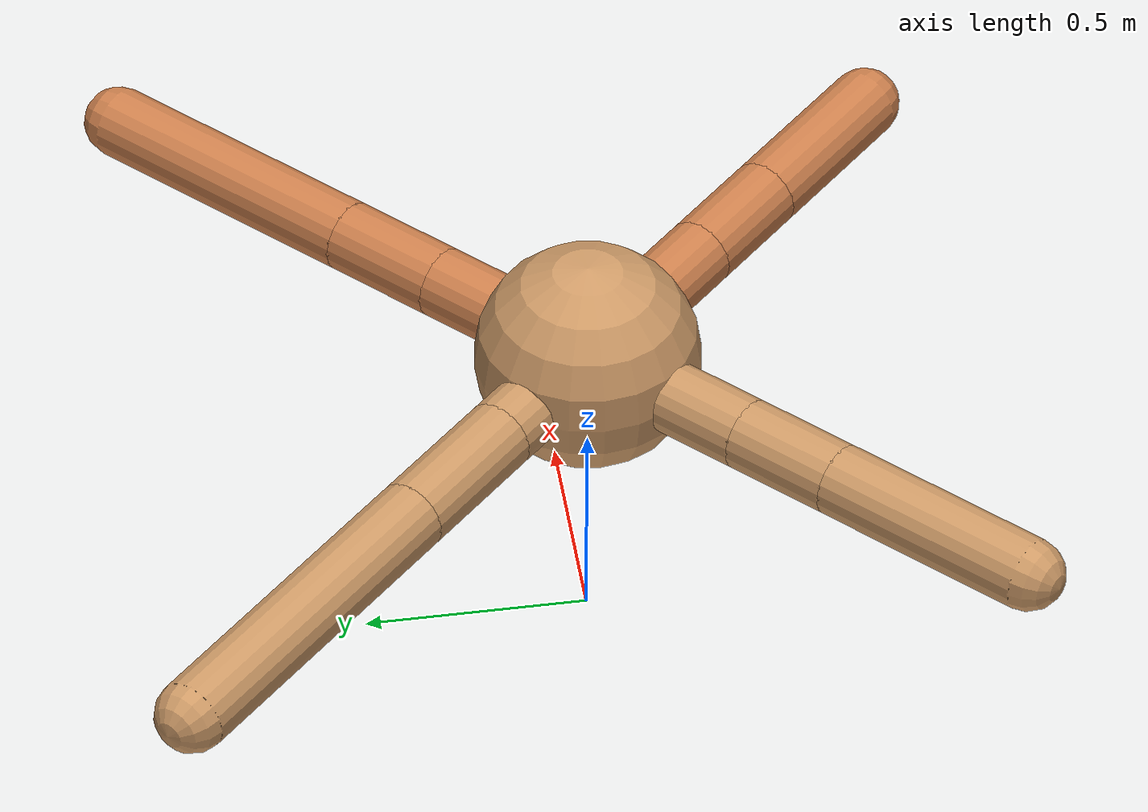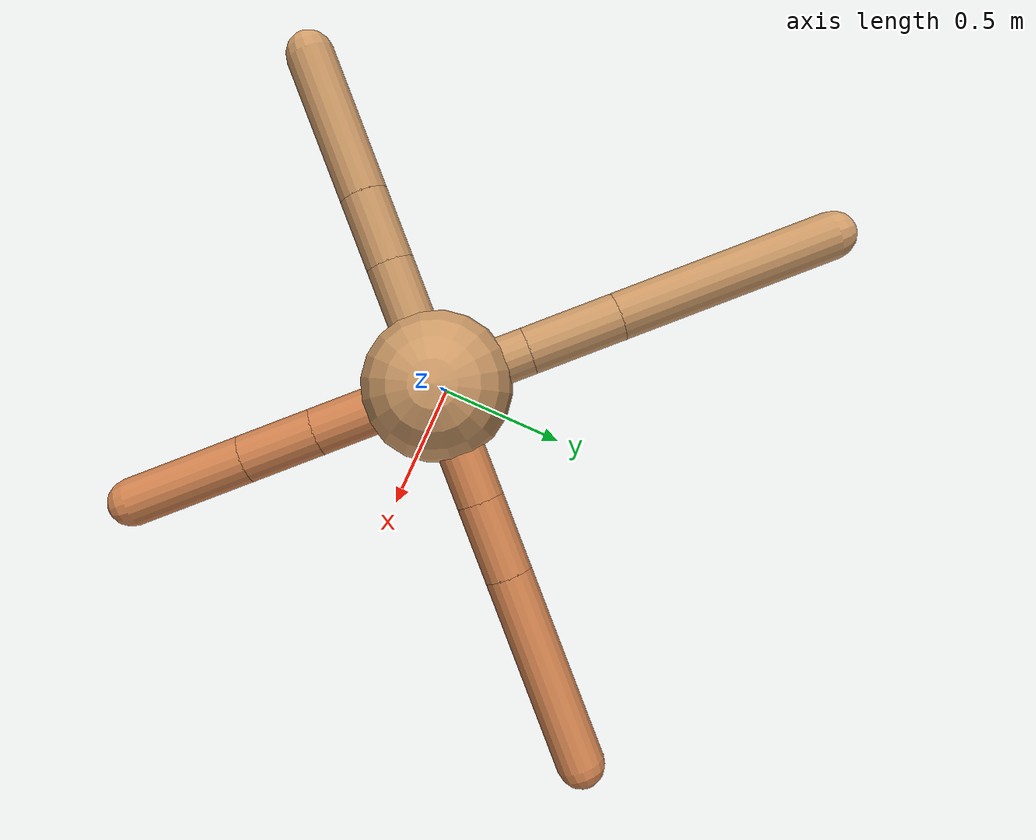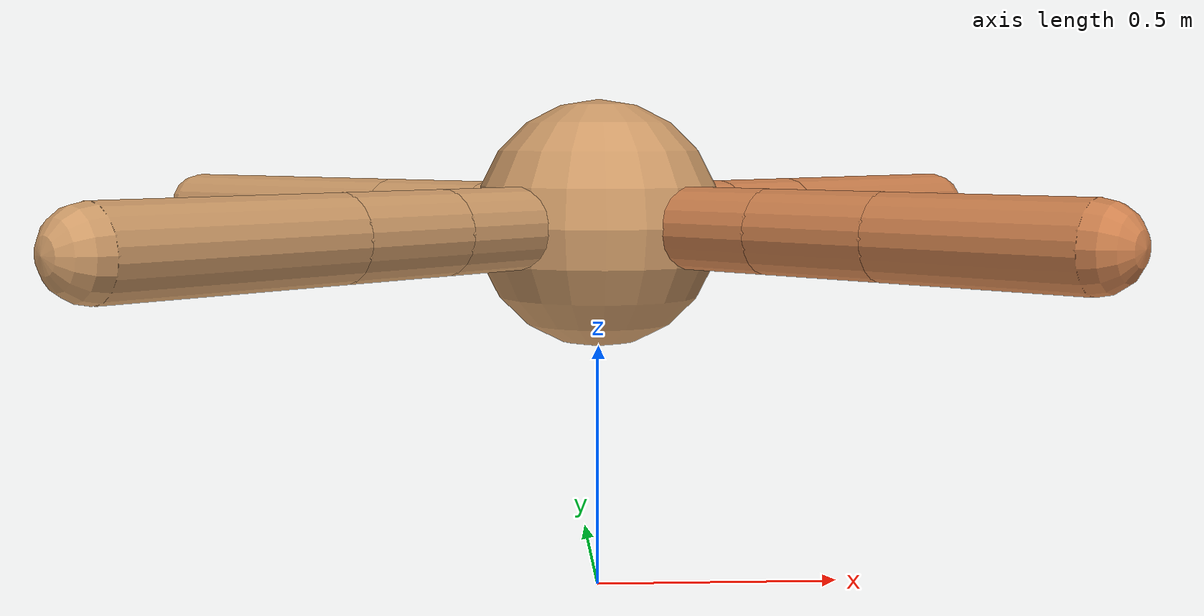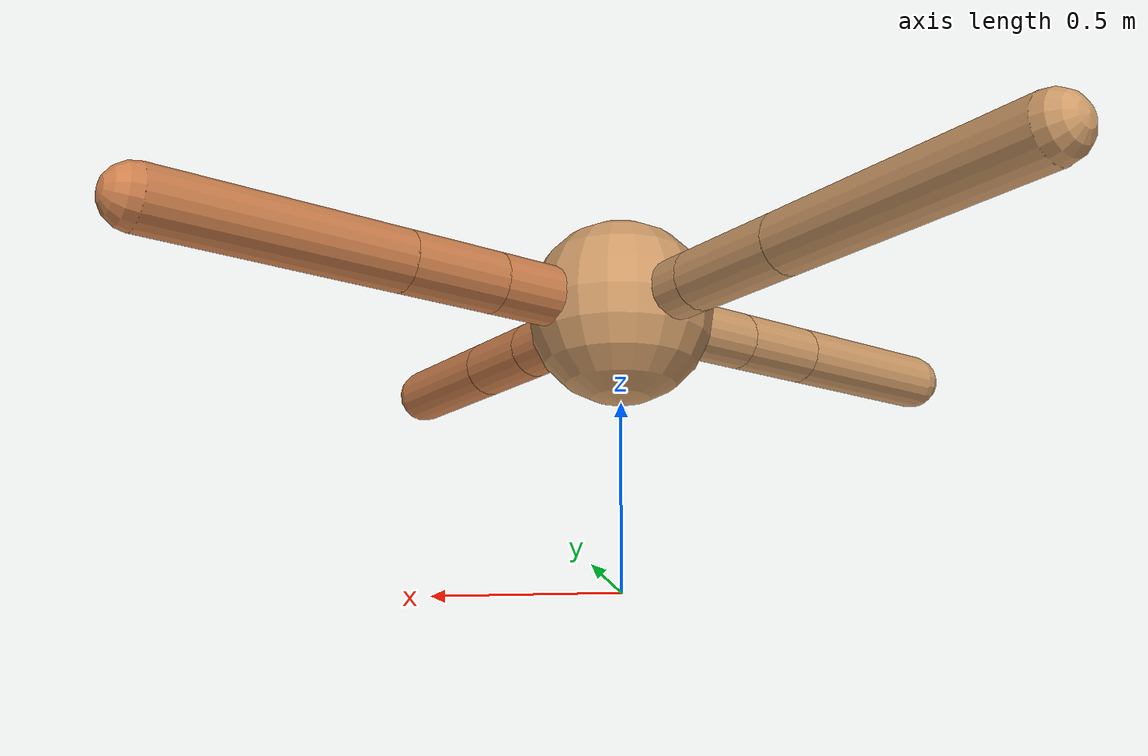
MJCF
<mujoco model="ant">
  <compiler angle="degree" coordinate="local" inertiafromgeom="true" />
  <option integrator="RK4" timestep="0.01" />
  <custom>
    <numeric data="0.0 0.0 0.55 1.0 0.0 0.0 0.0 0.0 1.0 0.0 -1.0 0.0 -1.0 0.0 1.0" name="init_qpos" />
  </custom>
  <default>
    <joint armature="1" damping="1" limited="true" />
    <geom conaffinity="0" condim="3" density="5.0" friction="1.5 0.1 0.1" margin="0.01" rgba="0.8 0.6 0.4 1" />
  </default>
  <worldbody>
    <body name="torso" pos="0 0 0.75">
      <geom name="torso_geom" pos="0 0 0" size="0.25" type="sphere" />

      <body name="front_left_leg" pos="0 0 0">
        <geom fromto="0.0 0.0 0.0 0.28260977772837775 0.28260977772837775 0.0" name="aux_1_geom" size="0.08" type="capsule" rgba=".8 .5 .3 1" />
        <body name="aux_1" pos="0.28260977772837775 0.28260977772837775 0.0">
          <joint axis="0 0 1" name="hip_1" pos="0.0 0.0 0.0" range="-40 40" type="hinge" />
          <geom fromto="0.0 0.0 0.0 0.182418823063672 0.182418823063672 0.0" name="left_leg_geom" size="0.08" type="capsule" rgba=".8 .5 .3 1" />
          <body pos="0.182418823063672 0.182418823063672 0.0" name="front_left_foot">
            <joint axis="-1 1 0" name="ankle_1" pos="0.0 0.0 0.0" range="30 100" type="hinge" />
            <geom fromto="0.0 0.0 0.0 0.46397912812356074 0.46397912812356074 0.0" name="left_ankle_geom" size="0.08" type="capsule" rgba=".8 .5 .3 1" />
          </body>
        </body>
      </body>
      <body name="front_right_leg" pos="0 0 0">
        <geom fromto="0.0 0.0 0.0 -0.22573015206044023 0.22573015206044023 0.0" name="aux_2_geom" size="0.08" type="capsule" />
        <body name="aux_2" pos="-0.22573015206044023 0.22573015206044023 0.0">
          <joint axis="0 0 1" name="hip_2" pos="0.0 0.0 0.0" range="-40 40" type="hinge" />
          <geom fromto="0.0 0.0 0.0 -0.2201730880954209 0.2201730880954209 0.0" name="right_leg_geom" size="0.08" type="capsule" />
          <body pos="-0.2201730880954209 0.2201730880954209 0.0" name="front_right_foot">
            <joint axis="1 1 0" name="ankle_2" pos="0.0 0.0 0.0" range="-100 -30" type="hinge" />
            <geom fromto="0.0 0.0 0.0 -0.5261714821522386 0.5261714821522386 0.0" name="right_ankle_geom" size="0.08" type="capsule" />
          </body>
        </body>
      </body>
      <body name="left_back_leg" pos="0 0 0">
        <geom fromto="0.0 0.0 0.0 -0.29992694084854876 -0.29992694084854876 0.0" name="aux_3_geom" size="0.08" type="capsule" />
        <body name="aux_3" pos="-0.29992694084854876 -0.29992694084854876 0.0">
          <joint axis="0 0 1" name="hip_3" pos="0.0 0.0 0.0" range="-40 40" type="hinge" />
          <geom fromto="0.0 0.0 0.0 -0.1690727038031683 -0.1690727038031683 0.0" name="back_leg_geom" size="0.08" type="capsule" />
          <body pos="-0.1690727038031683 -0.1690727038031683 0.0" name="left_back_foot">
            <joint axis="-1 1 0" name="ankle_3" pos="0.0 0.0 0.0" range="-100 -30" type="hinge" />
            <geom fromto="0.0 0.0 0.0 -0.3453680230835674 -0.3453680230835674 0.0" name="third_ankle_geom" size="0.08" type="capsule" />
          </body>
        </body>
      </body>
      <body name="right_back_leg" pos="0 0 0">
        <geom fromto="0.0 0.0 0.0 0.294624073249401 -0.294624073249401 0.0" name="aux_4_geom" size="0.08" type="capsule" rgba=".8 .5 .3 1" />
        <body name="aux_4" pos="0.294624073249401 -0.294624073249401 0.0">
          <joint axis="0 0 1" name="hip_4" pos="0.0 0.0 0.0" range="-40 40" type="hinge" />
          <geom fromto="0.0 0.0 0.0 0.17468098096129692 -0.17468098096129692 0.0" name="rightback_leg_geom" size="0.08" type="capsule" rgba=".8 .5 .3 1" />
          <body pos="0.17468098096129692 -0.17468098096129692 0.0" name="right_back_foot">
            <joint axis="1 1 0" name="ankle_4" pos="0.0 0.0 0.0" range="30 100" type="hinge" />
            <geom fromto="0.0 0.0 0.0 0.2775976942880922 -0.2775976942880922 0.0" name="fourth_ankle_geom" size="0.08" type="capsule" rgba=".8 .5 .3 1" />
          </body>
        </body>
      </body>
    </body>
  </worldbody>
  <actuator>
    <motor ctrllimited="true" ctrlrange="-1.0 1.0" joint="hip_4" gear="150" />
    <motor ctrllimited="true" ctrlrange="-1.0 1.0" joint="ankle_4" gear="150" />
    <motor ctrllimited="true" ctrlrange="-1.0 1.0" joint="hip_1" gear="150" />
    <motor ctrllimited="true" ctrlrange="-1.0 1.0" joint="ankle_1" gear="150" />
    <motor ctrllimited="true" ctrlrange="-1.0 1.0" joint="hip_2" gear="150" />
    <motor ctrllimited="true" ctrlrange="-1.0 1.0" joint="ankle_2" gear="150" />
    <motor ctrllimited="true" ctrlrange="-1.0 1.0" joint="hip_3" gear="150" />
    <motor ctrllimited="true" ctrlrange="-1.0 1.0" joint="ankle_3" gear="150" />
  </actuator>
</mujoco>
